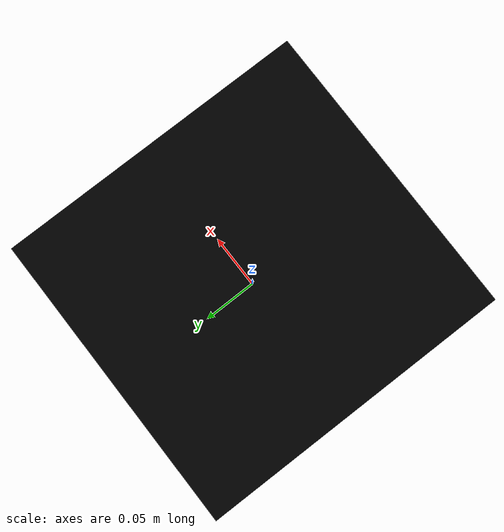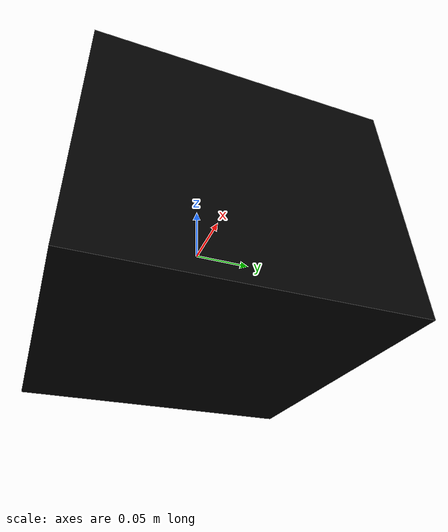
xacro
<?xml version="1.0" ?>
<robot name="kinect" xmlns:xacro="http://ros.org/wiki/xacro">
  <material name="black">
    <color rgba="0 0 0"/>
  </material>
  <link name="kinect_link">
    <visual>
      <geometry>
        <box size="0.24 0.25 0.2"/>
      </geometry>
      <material name="black"/>
    </visual>
  </link>
</robot>
